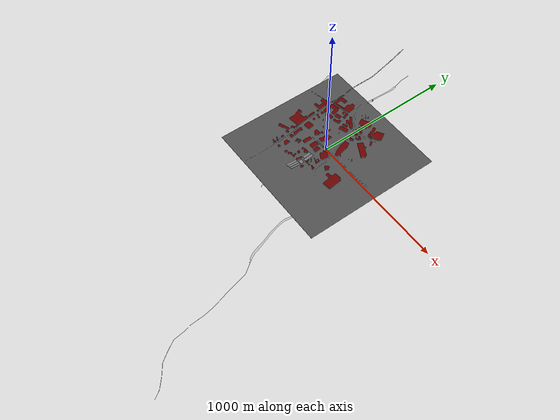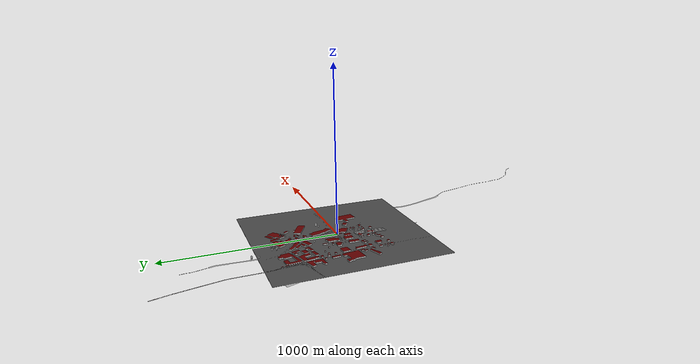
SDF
<sdf version="1.6">
 <world name="default">
  <light name="sun" type="directional">
   <pose>0 0 10 0 -0 0</pose>
   <diffuse>0.8 0.8 0.8 1</diffuse>
   <specular>0.2 0.2 0.2 1</specular>
   <attenuation>
    <range>1000</range>
    <constant>0.9</constant>
    <linear>0.01</linear>
    <quadratic>0.001</quadratic>
   </attenuation>
   <direction>-0.5 0.1 -0.9</direction>
  </light>
  <gravity>0 0 -9.8</gravity>
  <magnetic_field>6e-06 2.3e-05 -4.2e-05</magnetic_field>
  <atmosphere type="adiabatic"/>
  <physics name="default_physics" default="0" type="ode">
   <max_step_size>0.001</max_step_size>
   <real_time_factor>1</real_time_factor>
   <real_time_update_rate>1000</real_time_update_rate>
  </physics>
  <scene><ambient>0.85 0.85 0.85 1</ambient><background>0.7 0.7 0.7 1</background><shadows>1</shadows></scene>
  <spherical_coordinates>
   <surface_model>EARTH_WGS84</surface_model>
   <latitude_deg>0</latitude_deg>
   <longitude_deg>0</longitude_deg>
   <elevation>0</elevation>
   <heading_deg>0</heading_deg>
  </spherical_coordinates>
  <model name="city_osm_roundabout">
   <static>1</static>
   <link name="link">
    <collision name="collision">
     <geometry><mesh><uri>model://city_osm_roundabout/meshes/model.dae</uri></mesh></geometry>
    </collision>
    <visual name="visual">
     <geometry><mesh><uri>model://city_osm_roundabout/meshes/model.dae</uri></mesh></geometry>
    </visual>
   </link>
   <pose>-71.044 72.8353 0 0 -0 0.083366</pose>
  </model>
  <model name="asphalt_plane">
   <static>1</static>
   <link name="link">
    <collision name="collision"><geometry><box><size>1000 1000 1</size></box></geometry></collision>
    <visual name="visual">
     <cast_shadows>0</cast_shadows>
     <geometry><box><size>1000 1000 1</size></box></geometry>
     <material>
      <script>
       <uri>model://asphalt_plane/materials/scripts</uri>
       <uri>model://asphalt_plane/materials/textures</uri>
       <name>vrc/asphalt</name>
      </script>
     </material>
    </visual>
   </link>
   <pose>-5.05262 -0.597253 -0.452056 0 -0 0</pose>
  </model>
 </world>
</sdf>
